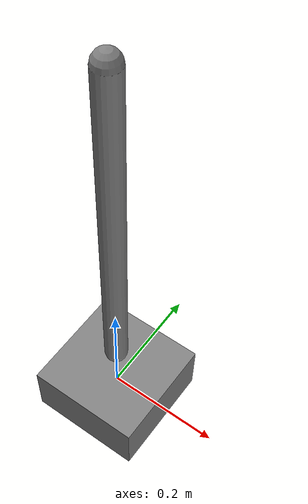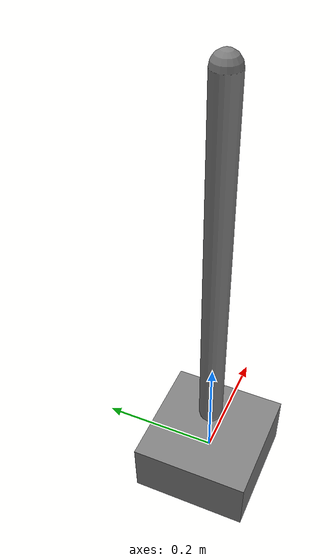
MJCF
<mujoco model="inverted_pendulum">
    <compiler inertiafromgeom="true"/>
    <default>
        <joint armature="0.01" damping="1"/>
        <geom friction="1 0.1 0.1"/>
    </default>

    <worldbody>
        <body name="cart" pos="0 0 0">
            <joint name="slider" type="slide" axis="1 0 0"/>
            <geom name="cart_geom" type="box" size="0.1 0.1 0.05"/>

            <body name="pole" pos="0 0 0.1">
                <joint name="hinge" type="hinge" axis="0 1 0"/>
                <geom name="pole_geom" type="capsule" size="0.02 0.3" fromto="0 0 0 0 0 0.6"/>
            </body>
        </body>
    </worldbody>
</mujoco>
